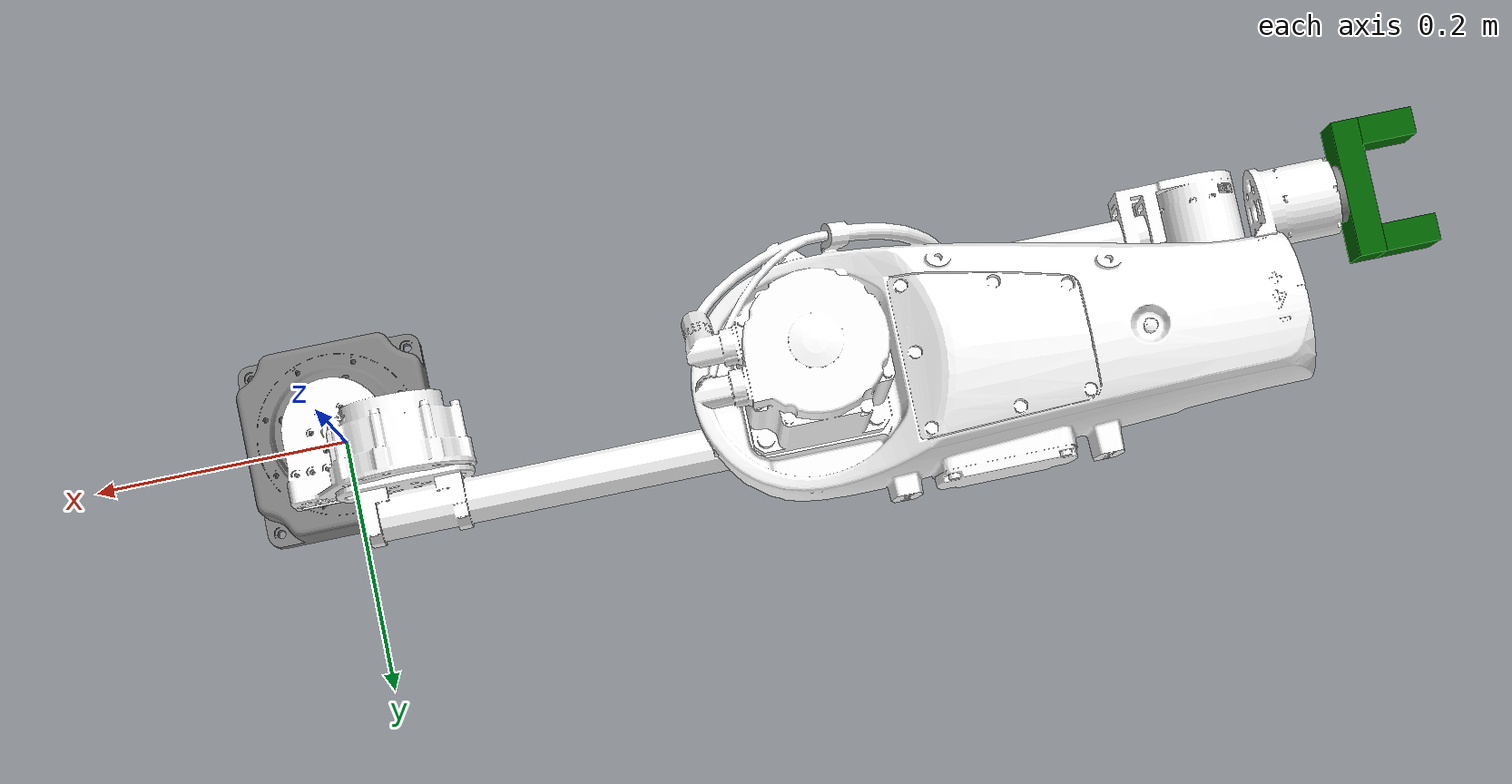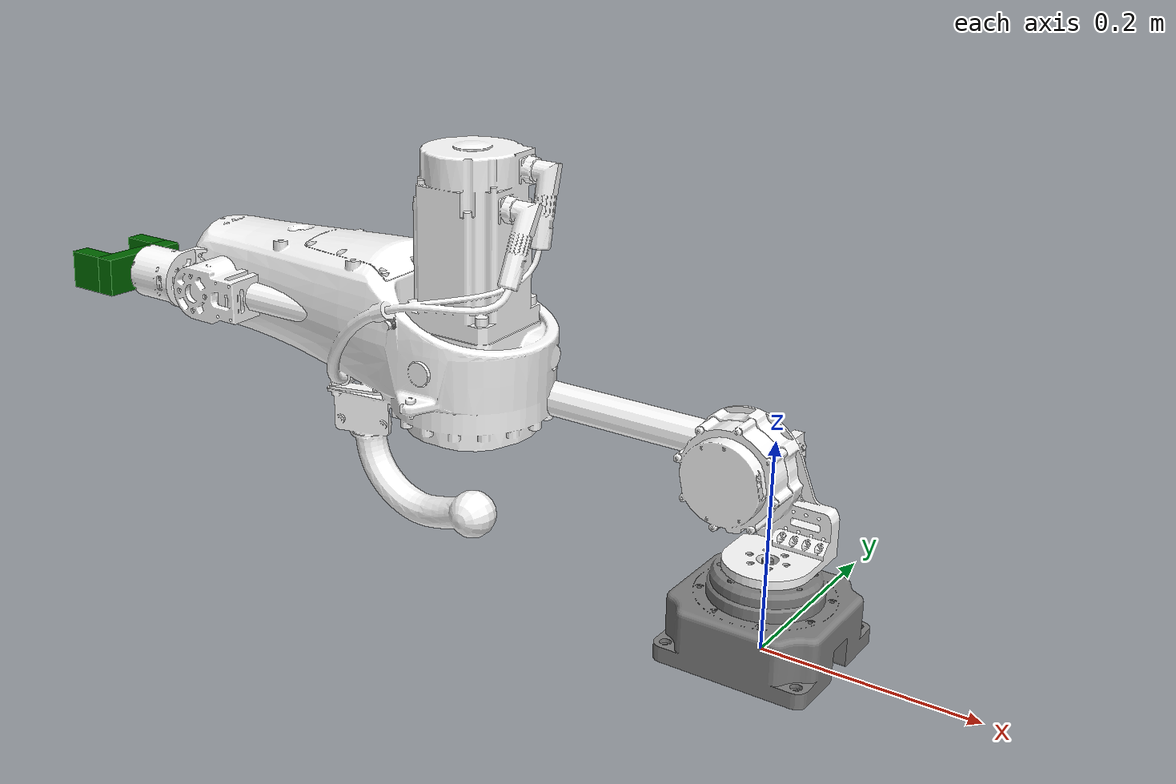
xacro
<?xml version="1.0"?>
<robot name="Lagrange_01" xmlns:xacro="http://www.ros.org/wiki/xacro">

    <xacro:include filename="common_properities.xacro"/>
    <xacro:include filename="Lagrange_01.xacro"/>
    <xacro:include filename="gripper.xacro"/>
    <xacro:include filename="Lagrange_01.ros2_control.xacro"/>

    <joint name="gripper_to_robot" type="fixed">
        <parent link="tool_link"/>
        <child link="gripper_base_link"/>
        <origin xyz="0 0 0" rpy="0 0 0"/>
    </joint>

</robot>

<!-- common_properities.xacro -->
<robot xmlns:xacro="http://www.ros.org/wiki/xacro">

    <material name="grey">
        <color rgba="0.5 0.5 0.5 1"/>
    </material>

    <material name="blue">
        <color rgba="0 0 0.5 1"/>
    </material>

    <material name="dark_green">
        <color rgba="0 0.4 0 1"/>
    </material>

    <material name="green">
        <color rgba="0 0.6 0 1"/>
    </material>

</robot>

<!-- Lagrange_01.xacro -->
<robot xmlns:xacro="http://www.ros.org/wiki/xacro">
  <joint
    name="j1"
    type="revolute">
    <origin
      xyz="0 0 0.0888"
      rpy="0 0 3.1416" />
    <parent
      link="base_link" />
    <child
      link="shoulder" />
    <axis
      xyz="0 0 -1" />
    <limit
      lower="-1.57"
      upper="1.57"
      effort="100"
      velocity="1.0" />
  </joint>
    <joint
    name="j2"
    type="revolute">
    <origin
      xyz="0.05 -0.0535 0.058"
      rpy="-1.5708 -3.1416 3.1416" />
    <parent
      link="shoulder" />
    <child
      link="arm1" />
    <axis
      xyz="0 0 1" />
    <limit
      lower="-0.2"
      upper="3.1415"
      effort="100"
      velocity="1.0" />
  </joint>
    <joint
    name="j3"
    type="revolute">
    <origin
      xyz="0.307 0 -0.001"
      rpy="0 0 0" />
    <parent
      link="arm1" />
    <child
      link="elbow" />
    <axis
      xyz="0 0 -1" />
    <limit
      lower="-1.57"
      upper="3.0"
      effort="100"
      velocity="1.0" />
  </joint>
    <joint
    name="j4"
    type="revolute">
    <origin
      xyz="0 0.065 -0.05255"
      rpy="-1.5708 -1.5708 -1.5708" />
    <parent
      link="elbow" />
    <child
      link="arm2" />
    <axis
      xyz="0 0 1" />
    <limit
      lower="-1.57"
      upper="1.57"
      effort="100"
      velocity="1.0" />
  </joint>
    <joint
    name="j5"
    type="revolute">
    <origin
      xyz="0.0259 0 0.3055"
      rpy="1.5708 -1.5708 1.5708" />
    <parent
      link="arm2" />
    <child
      link="wrist" />
    <axis
      xyz="0 0 -1" />
    <limit
      lower="-1.57"
      upper="1.57"
      effort="100"
      velocity="1.0" />
  </joint>
    <joint
    name="j6"
    type="revolute">
    <origin
      xyz="0.0986 0 -0.0267"
      rpy="1.5708 1.536 1.5708" />
    <parent
      link="wrist" />
    <child
      link="ee" />
    <axis
      xyz="0 0 -1" />
    <limit
      lower="-1.57"
      upper="1.57"
      effort="100"
      velocity="1.0" />
  </joint>
  <joint name="hand_tool_joint" type="fixed">
        <parent link="ee" />
        <child link="tool_link" />
        <origin xyz="0 0 0.006" rpy="0 0 0" />
  </joint>
  <link
    name="base_link">
    <inertial>
      <origin
        xyz="4.41011508878764E-05 -2.90756555668681E-05 0.0361387835104102"
        rpy="0 0 0" />
      <mass
        value="0.809840255220577" />
      <inertia
        ixx="0.00175354317772318"
        ixy="-3.3351357639085E-08"
        ixz="-1.15494031424985E-05"
        iyy="0.00162670948417624"
        iyz="-6.61769333761291E-08"
        izz="0.00306935595115229" />
    </inertial>
    <visual>
      <origin
        xyz="0 0 0"
        rpy="0 0 0" />
      <geometry>
        <mesh
          filename="package://my_robot_description/meshes/base_link.STL" />
      </geometry>
      <material name="grey"/>
    </visual>
    <collision>
      <origin
        xyz="0 0 0"
        rpy="0 0 0" />
      <geometry>
        <mesh
          filename="package://my_robot_description/meshes/base_link.STL" />
      </geometry>
    </collision>
  </link>
  <link
    name="shoulder">
    <inertial>
      <origin
        xyz="0.0289886964053496 -0.0301809705454806 0.0367970577713876"
        rpy="0 0 0" />
      <mass
        value="0.246398251542874" />
      <inertia
        ixx="0.000180993620440308"
        ixy="-3.74858776429711E-06"
        ixz="-2.296855341785E-05"
        iyy="0.000329690310718771"
        iyz="-1.9870058151598E-07"
        izz="0.000223732490676728" />
    </inertial>
    <visual>
      <origin
        xyz="0 0 0"
        rpy="0 0 0" />
      <geometry>
        <mesh
          filename="package://my_robot_description/meshes/shoulder.STL" />
      </geometry>
      <material
        name="">
        <color
          rgba="1 1 1 1" />
      </material>
    </visual>
    <collision>
      <origin
        xyz="0 0 0"
        rpy="0 0 0" />
      <geometry>
        <mesh
          filename="package://my_robot_description/meshes/shoulder.STL" />
      </geometry>
    </collision>
  </link>
  <link
    name="arm1">
    <inertial>
      <origin
        xyz="0.146112992897114 6.40865138734625E-12 0.0194000233256321"
        rpy="0 0 0" />
      <mass
        value="0.172300182895447" />
      <inertia
        ixx="5.70121551241632E-05"
        ixy="-2.04753504900016E-08"
        ixz="2.48481066314224E-10"
        iyy="0.000923693984989881"
        iyz="-1.57920077297098E-14"
        izz="0.000948994175431864" />
    </inertial>
    <visual>
      <origin
        xyz="0 0 0"
        rpy="0 0 0" />
      <geometry>
        <mesh
          filename="package://my_robot_description/meshes/arm1.STL" />
      </geometry>
      <material
        name="">
        <color
          rgba="1 1 1 1" />
      </material>
    </visual>
    <collision>
      <origin
        xyz="0 0 0"
        rpy="0 0 0" />
      <geometry>
        <mesh
          filename="package://my_robot_description/meshes/arm1.STL" />
      </geometry>
    </collision>
  </link>
  <link
    name="elbow">
    <inertial>
      <origin
        xyz="0.0361747964819732 0.0408307812875339 -0.0272932242166123"
        rpy="0 0 0" />
      <mass
        value="0.284448265743689" />
      <inertia
        ixx="0.000222232973321951"
        ixy="-3.88755261394376E-05"
        ixz="2.48198628008984E-07"
        iyy="0.000153500497691171"
        iyz="-1.706672036193E-06"
        izz="0.000297168544530739" />
    </inertial>
    <visual>
      <origin
        xyz="0 0 0"
        rpy="0 0 0" />
      <geometry>
        <mesh
          filename="package://my_robot_description/meshes/elbow.STL" />
      </geometry>
      <material
        name="">
        <color
          rgba="1 1 1 1" />
      </material>
    </visual>
    <collision>
      <origin
        xyz="0 0 0"
        rpy="0 0 0" />
      <geometry>
        <mesh
          filename="package://my_robot_description/meshes/elbow.STL" />
      </geometry>
    </collision>
  </link>
  <link
    name="arm2">
    <inertial>
      <origin
        xyz="-0.00595945402412162 -5.32739356225442E-05 0.252334366906384"
        rpy="0 0 0" />
      <mass
        value="0.107861938906089" />
      <inertia
        ixx="0.000162118569669926"
        ixy="-6.57666219522903E-08"
        ixz="-7.29599288696642E-08"
        iyy="0.000146539139756443"
        iyz="-1.80802905320553E-07"
        izz="2.97799591500001E-05" />
    </inertial>
    <visual>
      <origin
        xyz="0 0 0"
        rpy="0 0 0" />
      <geometry>
        <mesh
          filename="package://my_robot_description/meshes/arm2.STL" />
      </geometry>
      <material
        name="">
        <color
          rgba="1 1 1 1" />
      </material>
    </visual>
    <collision>
      <origin
        xyz="0 0 0"
        rpy="0 0 0" />
      <geometry>
        <mesh
          filename="package://my_robot_description/meshes/arm2.STL" />
      </geometry>
    </collision>
  </link>
  <link
    name="wrist">
    <inertial>
      <origin
        xyz="0.044453379437331 7.44185616712301E-05 -0.0146834741303253"
        rpy="0 0 0" />
      <mass
        value="0.085343913975739" />
      <inertia
        ixx="3.95644042665526E-05"
        ixy="-9.0338673212097E-07"
        ixz="-1.34778006725232E-09"
        iyy="3.00242071647503E-05"
        iyz="6.54951185528677E-07"
        izz="3.76111917704214E-05" />
    </inertial>
    <visual>
      <origin
        xyz="0 0 0"
        rpy="0 0 0" />
      <geometry>
        <mesh
          filename="package://my_robot_description/meshes/wrist.STL" />
      </geometry>
      <material
        name="">
        <color
          rgba="1 1 1 1" />
      </material>
    </visual>
    <collision>
      <origin
        xyz="0 0 0"
        rpy="0 0 0" />
      <geometry>
        <mesh
          filename="package://my_robot_description/meshes/wrist.STL" />
      </geometry>
    </collision>
  </link>
  <link
    name="ee">
    <inertial>
      <origin
        xyz="5.55111512312578E-17 0 0.00293833383379588"
        rpy="0 0 0" />
      <mass
        value="0.0073680722836419" />
      <inertia
        ixx="8.38696312093355E-07"
        ixy="-4.0697286137609E-22"
        ixz="1.49719690872098E-22"
        iyy="8.38696312093354E-07"
        iyz="1.58818677610181E-22"
        izz="1.63251325062631E-06" />
    </inertial>
    <visual>
      <origin
        xyz="0 0 0"
        rpy="0 0 0" />
      <geometry>
        <mesh
          filename="package://my_robot_description/meshes/ee.STL" />
      </geometry>
      <material
        name="">
        <color
          rgba="0.525490196078431 0.525490196078431 0.525490196078431 1" />
      </material>
    </visual>
    <collision>
      <origin
        xyz="0 0 0"
        rpy="0 0 0" />
      <geometry>
        <mesh
          filename="package://my_robot_description/meshes/ee.STL" />
      </geometry>
    </collision>
  </link>
  <link name="tool_link" />
</robot>

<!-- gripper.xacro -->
<robot xmlns:xacro="http://www.ros.org/wiki/xacro">

    <link name="gripper_base_link">
        <visual>
            <geometry>
                <box size="0.1 0.04 0.02"/>
            </geometry>
            <origin xyz="0 0 0.01" rpy="0 0 0"/>
            <material name="dark_green"/>
        </visual>
        <collision>
            <geometry>
                <box size="0.1 0.04 0.02"/>
            </geometry>
            <origin xyz="0 0 0.01" rpy="0 0 0"/>
            <material name="dark_green"/>
        </collision>
    </link>
    <link name="gripper_left_finger_link">
        <visual>
            <geometry>
                <box size="0.02 0.04 0.04"/>
            </geometry>
            <origin xyz="0 0 0.02" rpy="0 0 0"/>
            <material name="dark_green"/>
        </visual>
       <collision>
            <geometry>
                <box size="0.02 0.04 0.04"/>
            </geometry>
            <origin xyz="0 0 0.02" rpy="0 0 0"/>
            <material name="dark_green"/>
        </collision>
    </link>
    <link name="gripper_right_finger_link">
        <visual>
            <geometry>
                <box size="0.02 0.04 0.04"/>
            </geometry>
            <origin xyz="0 0 0.02" rpy="0 0 0"/>
            <material name="dark_green"/>
        </visual>
       <collision>
            <geometry>
                <box size="0.02 0.04 0.04"/>
            </geometry>
            <origin xyz="0 0 0.02" rpy="0 0 0"/>
            <material name="dark_green"/>
        </collision>
    </link>
    <joint name="gripper_left_finger_joint" type="prismatic">
        <parent link="gripper_base_link"/>
        <child link="gripper_left_finger_link"/>
        <origin xyz="-0.04 0 0.02" rpy="0 0 0"/>
        <axis xyz="1 0 0"/>
        <limit effort="1000.0" velocity="1.0" lower="0.0" upper="0.03"/>
    </joint>
    <joint name="gripper_right_finger_joint" type="prismatic">
        <parent link="gripper_base_link"/>
        <child link="gripper_right_finger_link"/>
        <origin xyz="0.04 0 0.02" rpy="0 0 0"/>
        <axis xyz="1 0 0"/>
        <mimic joint="gripper_left_finger_joint" multiplier="-1.0"/>
        <limit effort="1000.0" velocity="1.0" lower="-0.03" upper="0"/>
    </joint>

</robot>
